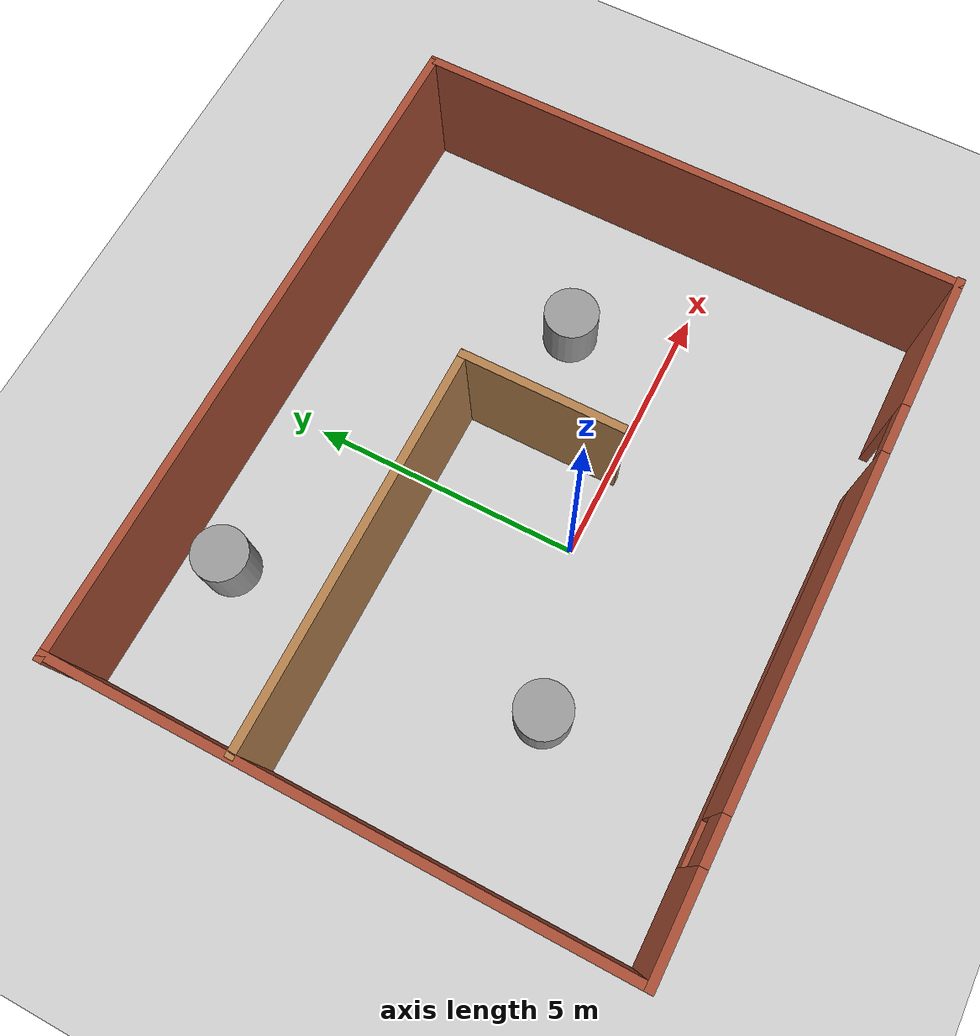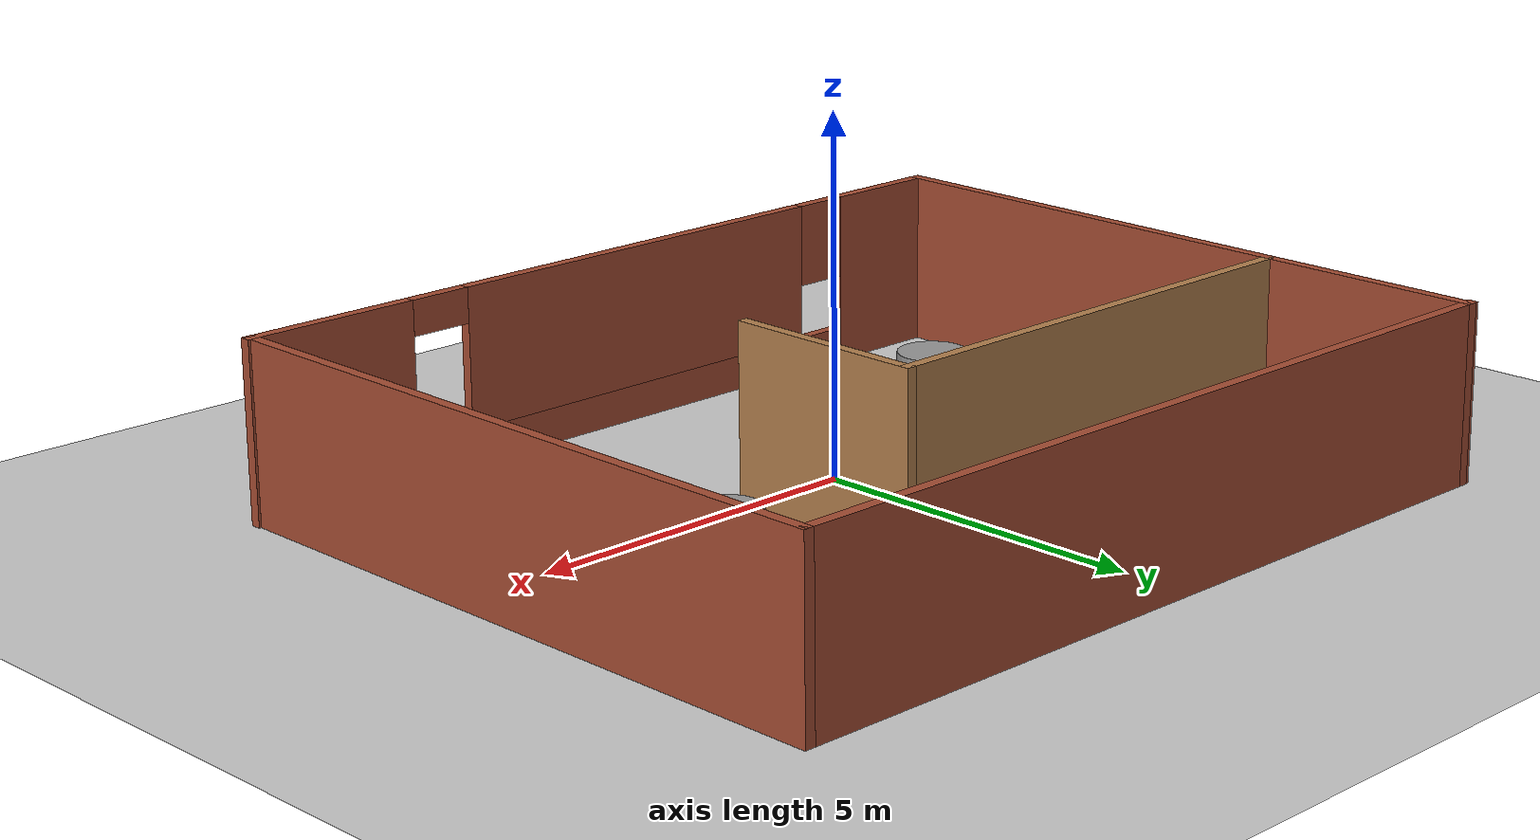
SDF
<sdf version="1.6">
 <world name="default">
  <light name="sun" type="directional">
   <pose>0 0 10 0 -0 0</pose>
   <diffuse>0.8 0.8 0.8 1</diffuse>
   <specular>0.2 0.2 0.2 1</specular>
   <attenuation>
    <range>1000</range>
    <constant>0.9</constant>
    <linear>0.01</linear>
    <quadratic>0.001</quadratic>
   </attenuation>
   <direction>-0.5 0.1 -0.9</direction>
  </light>
  <model name="ground_plane">
   <static>1</static>
   <link name="link">
    <collision name="collision">
     <geometry><plane><normal>0 0 1</normal><size>100 100</size></plane></geometry>
     <surface>
      <contact><collide_bitmask>65535</collide_bitmask></contact>
      <friction><ode><mu>100</mu><mu2>50</mu2></ode></friction>
     </surface>
    </collision>
    <visual name="visual">
     <cast_shadows>0</cast_shadows>
     <geometry><plane><normal>0 0 1</normal><size>100 100</size></plane></geometry>
     <material>
      <script><uri>file://media/materials/scripts/gazebo.material</uri><name>Gazebo/Grey</name></script>
     </material>
    </visual>
   </link>
  </model>
  <gravity>0 0 -9.8</gravity>
  <magnetic_field>6e-06 2.3e-05 -4.2e-05</magnetic_field>
  <atmosphere type="adiabatic"/>
  <physics name="default_physics" default="0" type="ode">
   <max_step_size>0.001</max_step_size>
   <real_time_factor>1</real_time_factor>
   <real_time_update_rate>1000</real_time_update_rate>
  </physics>
  <scene><ambient>0.4 0.4 0.4 1</ambient><background>0.7 0.7 0.7 1</background><shadows>1</shadows></scene>
  <audio><device>default</device></audio>
  <spherical_coordinates>
   <surface_model>EARTH_WGS84</surface_model>
   <latitude_deg>0</latitude_deg>
   <longitude_deg>0</longitude_deg>
   <elevation>0</elevation>
   <heading_deg>0</heading_deg>
  </spherical_coordinates>
  <model name="sumi">
   <pose>0.368916 1.04178 0 0 -0 0</pose>
   <link name="Wall_0">
    <collision name="Wall_0_Collision">
     <geometry><box><size>12.1761 0.15 2.5</size></box></geometry>
     <pose>0 0 1.25 0 -0 0</pose>
    </collision>
    <visual name="Wall_0_Visual">
     <pose>0 0 1.25 0 -0 0</pose>
     <geometry><box><size>12.1761 0.15 2.5</size></box></geometry>
     <material>
      <script><uri>file://media/materials/scripts/gazebo.material</uri><name>Gazebo/Bricks</name></script>
      <ambient>1 1 1 1</ambient>
     </material>
     <meta><layer>0</layer></meta>
    </visual>
    <pose>-0.023506 4.95636 0 0 -0 3.13582</pose>
   </link>
   <link name="Wall_1">
    <collision name="Wall_1_Collision">
     <geometry><box><size>10.0627 0.15 2.5</size></box></geometry>
     <pose>0 0 1.25 0 -0 0</pose>
    </collision>
    <visual name="Wall_1_Visual">
     <pose>0 0 1.25 0 -0 0</pose>
     <geometry><box><size>10.0627 0.15 2.5</size></box></geometry>
     <material>
      <script><uri>file://media/materials/scripts/gazebo.material</uri><name>Gazebo/Bricks</name></script>
      <ambient>1 1 1 1</ambient>
     </material>
     <meta><layer>0</layer></meta>
    </visual>
    <pose>-6.00734 0.034695 0 0 -0 -1.57418</pose>
   </link>
   <link name="Wall_2">
    <pose>0.006159 -4.95636 0 0 -0 -0.005754</pose>
    <visual name="Wall_2_Visual_0">
     <pose>-5.20563 0 1.25 0 -0 0</pose>
     <geometry><box><size>1.7995 0.15 2.5</size></box></geometry>
     <material>
      <script><uri>file://media/materials/scripts/gazebo.material</uri><name>Gazebo/Bricks</name></script>
      <ambient>1 1 1 1</ambient>
     </material>
     <meta><layer>0</layer></meta>
    </visual>
    <collision name="Wall_2_Collision_0">
     <geometry><box><size>1.7995 0.15 2.5</size></box></geometry>
     <pose>-5.20563 0 1.25 0 -0 0</pose>
    </collision>
    <visual name="Wall_2_Visual_1">
     <pose>4.82156 0 1.25 0 -0 0</pose>
     <geometry><box><size>2.56765 0.15 2.5</size></box></geometry>
     <material>
      <script><uri>file://media/materials/scripts/gazebo.material</uri><name>Gazebo/Bricks</name></script>
      <ambient>1 1 1 1</ambient>
     </material>
     <meta><layer>0</layer></meta>
    </visual>
    <collision name="Wall_2_Collision_1">
     <geometry><box><size>2.56765 0.15 2.5</size></box></geometry>
     <pose>4.82156 0 1.25 0 -0 0</pose>
    </collision>
    <visual name="Wall_2_Visual_2">
     <pose>-0.834072 0 0.25 0 -0 0</pose>
     <geometry><box><size>6.94362 0.15 0.5</size></box></geometry>
     <material>
      <script><uri>file://media/materials/scripts/gazebo.material</uri><name>Gazebo/Bricks</name></script>
      <ambient>1 1 1 1</ambient>
     </material>
     <meta><layer>0</layer></meta>
    </visual>
    <collision name="Wall_2_Collision_2">
     <geometry><box><size>6.94362 0.15 0.5</size></box></geometry>
     <pose>-0.834072 0 0.25 0 -0 0</pose>
    </collision>
    <visual name="Wall_2_Visual_3">
     <pose>-0.434072 0 1.5 0 -0 0</pose>
     <geometry><box><size>6.14362 0.15 2</size></box></geometry>
     <material>
      <script><uri>file://media/materials/scripts/gazebo.material</uri><name>Gazebo/Bricks</name></script>
      <ambient>1 1 1 1</ambient>
     </material>
     <meta><layer>0</layer></meta>
    </visual>
    <collision name="Wall_2_Collision_3">
     <geometry><box><size>6.14362 0.15 2</size></box></geometry>
     <pose>-0.434072 0 1.5 0 -0 0</pose>
    </collision>
    <visual name="Wall_2_Visual_4">
     <pose>-3.90588 0 1.9 0 -0 0</pose>
     <geometry><box><size>0.8 0.15 1.2</size></box></geometry>
     <material>
      <script><uri>file://media/materials/scripts/gazebo.material</uri><name>Gazebo/Bricks</name></script>
      <ambient>1 1 1 1</ambient>
     </material>
     <meta><layer>0</layer></meta>
    </visual>
    <collision name="Wall_2_Collision_4">
     <geometry><box><size>0.8 0.15 1.2</size></box></geometry>
     <pose>-3.90588 0 1.9 0 -0 0</pose>
    </collision>
    <visual name="Wall_2_Visual_5">
     <pose>3.08774 0 2.25 0 -0 0</pose>
     <geometry><box><size>0.9 0.15 0.5</size></box></geometry>
     <material>
      <script><uri>file://media/materials/scripts/gazebo.material</uri><name>Gazebo/Bricks</name></script>
      <ambient>1 1 1 1</ambient>
     </material>
     <meta><layer>0</layer></meta>
    </visual>
    <collision name="Wall_2_Collision_5">
     <geometry><box><size>0.9 0.15 0.5</size></box></geometry>
     <pose>3.08774 0 2.25 0 -0 0</pose>
    </collision>
   </link>
   <link name="Wall_3">
    <collision name="Wall_3_Collision">
     <geometry><box><size>10.0627 0.15 2.5</size></box></geometry>
     <pose>0 0 1.25 0 -0 0</pose>
    </collision>
    <visual name="Wall_3_Visual">
     <pose>0 0 1.25 0 -0 0</pose>
     <geometry><box><size>10.0627 0.15 2.5</size></box></geometry>
     <material>
      <script><uri>file://media/materials/scripts/gazebo.material</uri><name>Gazebo/Bricks</name></script>
      <ambient>1 1 1 1</ambient>
     </material>
     <meta><layer>0</layer></meta>
    </visual>
    <pose>6.01853 -0.034696 0 0 -0 1.56741</pose>
   </link>
   <link name="Wall_7">
    <collision name="Wall_7_Collision">
     <geometry><box><size>7.25 0.15 2.5</size></box></geometry>
     <pose>0 0 1.25 0 -0 0</pose>
    </collision>
    <visual name="Wall_7_Visual">
     <pose>0 0 1.25 0 -0 0</pose>
     <geometry><box><size>7.25 0.15 2.5</size></box></geometry>
     <material>
      <script><uri>file://media/materials/scripts/gazebo.material</uri><name>Gazebo/Wood</name></script>
      <ambient>1 1 1 1</ambient>
     </material>
     <meta><layer>0</layer></meta>
    </visual>
    <pose>-2.39874 1.73933 0 0 -0 0</pose>
   </link>
   <link name="Wall_8">
    <collision name="Wall_8_Collision">
     <geometry><box><size>3 0.15 2.5</size></box></geometry>
     <pose>0 0 1.25 0 -0 0</pose>
    </collision>
    <visual name="Wall_8_Visual">
     <pose>0 0 1.25 0 -0 0</pose>
     <geometry><box><size>3 0.15 2.5</size></box></geometry>
     <material>
      <script><uri>file://media/materials/scripts/gazebo.material</uri><name>Gazebo/Wood</name></script>
      <ambient>1 1 1 1</ambient>
     </material>
     <meta><layer>0</layer></meta>
    </visual>
    <pose>1.15126 0.314331 0 0 -0 -1.5708</pose>
   </link>
   <static>1</static>
  </model>
  <model name="unit_cylinder">
   <pose>-2.78789 -0.856599 0.499997 3e-06 4e-06 -0</pose>
   <link name="link">
    <inertial>
     <mass>1</mass>
     <inertia><ixx>0.145833</ixx><ixy>0</ixy><ixz>0</ixz><iyy>0.145833</iyy><iyz>0</iyz><izz>0.125</izz></inertia>
    </inertial>
    <collision name="collision">
     <geometry><cylinder><radius>0.5</radius><length>1</length></cylinder></geometry>
    </collision>
    <visual name="visual">
     <geometry><cylinder><radius>0.5</radius><length>1</length></cylinder></geometry>
     <material>
      <script><name>Gazebo/Grey</name><uri>file://media/materials/scripts/gazebo.material</uri></script>
     </material>
    </visual>
   </link>
  </model>
  <model name="unit_cylinder_0">
   <pose>3.72283 1.84186 0.499993 -3e-06 -4e-06 -0</pose>
   <link name="link">
    <inertial>
     <mass>1</mass>
     <inertia><ixx>0.145833</ixx><ixy>0</ixy><ixz>0</ixz><iyy>0.145833</iyy><iyz>0</iyz><izz>0.125</izz></inertia>
    </inertial>
    <collision name="collision">
     <geometry><cylinder><radius>0.5</radius><length>1</length></cylinder></geometry>
    </collision>
    <visual name="visual">
     <geometry><cylinder><radius>0.5</radius><length>1</length></cylinder></geometry>
     <material>
      <script><name>Gazebo/Grey</name><uri>file://media/materials/scripts/gazebo.material</uri></script>
     </material>
    </visual>
   </link>
  </model>
  <model name="unit_cylinder_1">
   <pose>-2.9174 5.08735 0.499997 3e-06 4e-06 -0</pose>
   <link name="link">
    <inertial>
     <mass>1</mass>
     <inertia><ixx>0.145833</ixx><ixy>0</ixy><ixz>0</ixz><iyy>0.145833</iyy><iyz>0</iyz><izz>0.125</izz></inertia>
    </inertial>
    <collision name="collision">
     <geometry><cylinder><radius>0.5</radius><length>1</length></cylinder></geometry>
    </collision>
    <visual name="visual">
     <geometry><cylinder><radius>0.5</radius><length>1</length></cylinder></geometry>
     <material>
      <script><name>Gazebo/Grey</name><uri>file://media/materials/scripts/gazebo.material</uri></script>
     </material>
    </visual>
   </link>
  </model>
 </world>
</sdf>
